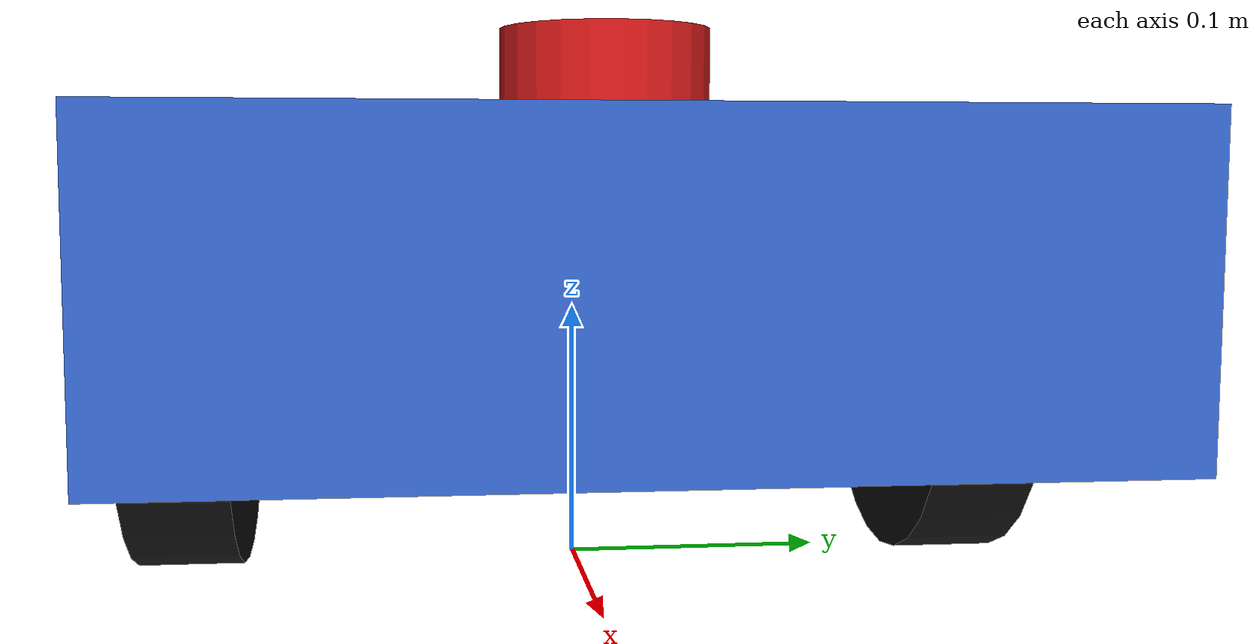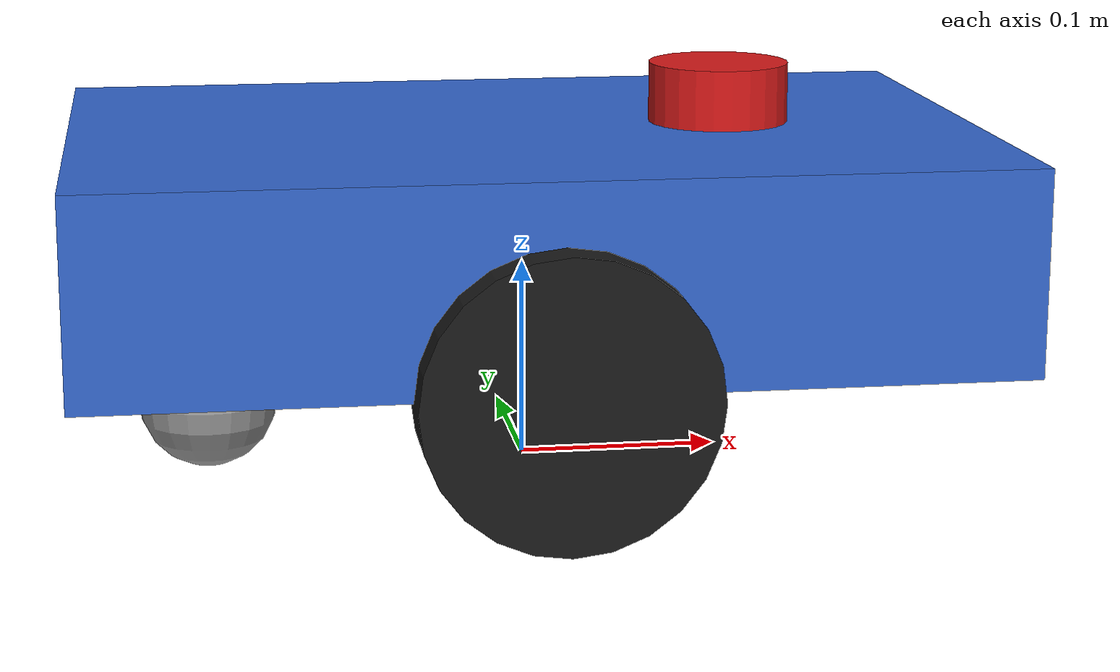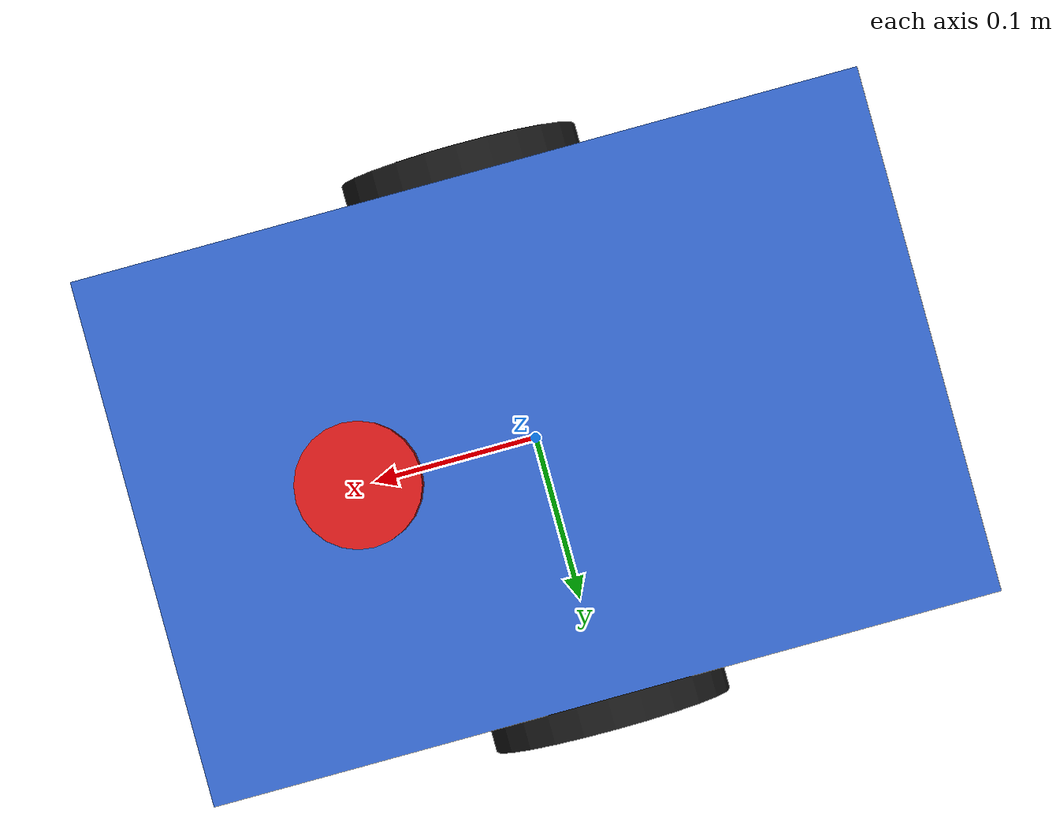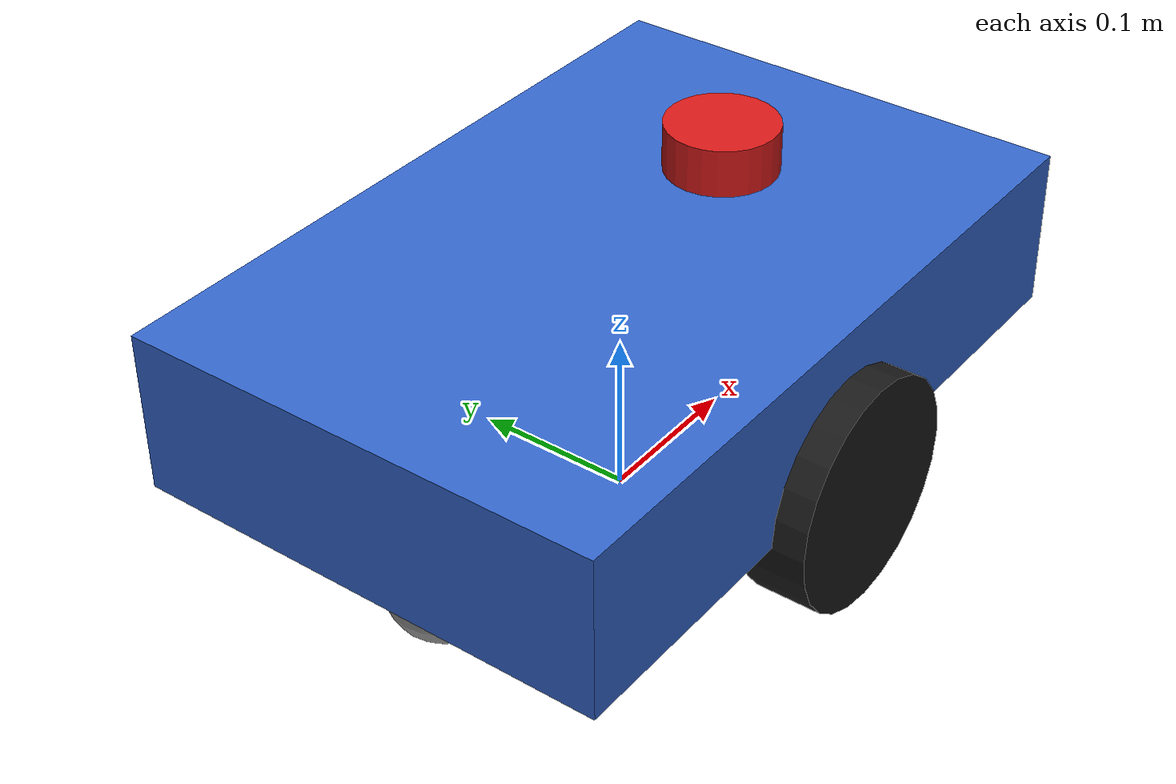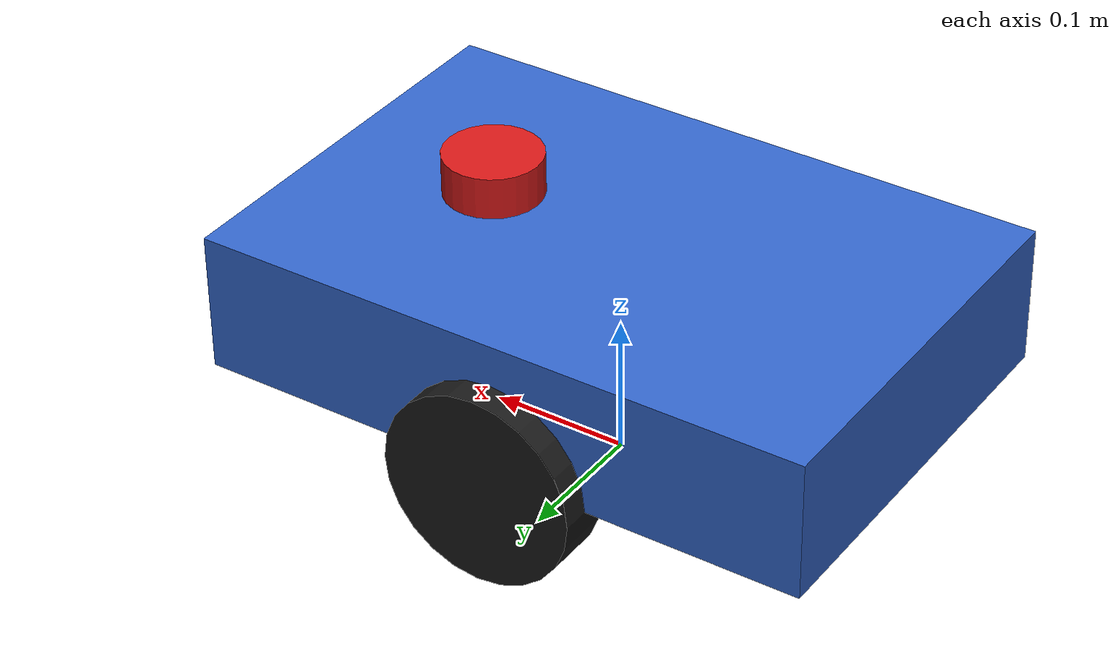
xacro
<?xml version="1.0"?>
<robot name="simple_robot" xmlns:xacro="http://www.ros.org/wiki/xacro">
  <!-- 模块化组织（对应PPT建议结构） -->
  <xacro:include filename="$(find pcyy_robot_description)/urdf/common_properties.xacro"/>
  <xacro:include filename="$(find pcyy_robot_description)/urdf/chassis.xacro"/>
  <xacro:include filename="$(find pcyy_robot_description)/urdf/wheels.xacro"/>
  <xacro:include filename="$(find pcyy_robot_description)/urdf/sensors.xacro"/>
  <xacro:include filename="$(find pcyy_robot_description)/urdf/gazebo_plugins.xacro"/>

  <xacro:simple_chassis/>
  <xacro:wheel_module side="left" sign="1"/>
  <xacro:wheel_module side="right" sign="-1"/>
  <xacro:simple_lidar/>
  <xacro:gazebo_extensions/>
</robot>

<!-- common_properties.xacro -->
<robot xmlns:xacro="http://www.ros.org/wiki/xacro">
  <!-- 几何/质量参数 -->
  <xacro:property name="base_length" value="0.45"/>
  <xacro:property name="base_width" value="0.30"/>
  <xacro:property name="base_height" value="0.10"/>
  <xacro:property name="base_mass" value="6.0"/>

  <xacro:property name="wheel_radius" value="0.07"/>
  <xacro:property name="wheel_width" value="0.04"/>
  <xacro:property name="wheel_mass" value="0.8"/>
  <xacro:property name="wheel_y_offset" value="0.15"/>

  <xacro:property name="caster_radius" value="0.035"/>
  <xacro:property name="caster_mass" value="0.25"/>
  <xacro:property name="caster_x_offset" value="-0.16"/>

  <xacro:property name="lidar_radius" value="0.035"/>
  <xacro:property name="lidar_height" value="0.04"/>
  <xacro:property name="lidar_mass" value="0.12"/>
  <xacro:property name="lidar_x_offset" value="0.10"/>
  <xacro:property name="lidar_z_offset" value="0.18"/>

  <!-- 惯量宏 -->
  <xacro:macro name="box_inertial" params="mass x y z">
    <inertial>
      <origin xyz="0 0 0" rpy="0 0 0"/>
      <mass value="${mass}"/>
      <inertia ixx="${mass*(y*y+z*z)/12.0}" ixy="0" ixz="0"
               iyy="${mass*(x*x+z*z)/12.0}" iyz="0"
               izz="${mass*(x*x+y*y)/12.0}"/>
    </inertial>
  </xacro:macro>

  <xacro:macro name="cylinder_inertial" params="mass radius length">
    <inertial>
      <origin xyz="0 0 0" rpy="0 0 0"/>
      <mass value="${mass}"/>
      <inertia ixx="${mass*(3*radius*radius + length*length)/12.0}" ixy="0" ixz="0"
               iyy="${0.5*mass*radius*radius}" iyz="0"
               izz="${mass*(3*radius*radius + length*length)/12.0}"/>
    </inertial>
  </xacro:macro>

  <xacro:macro name="sphere_inertial" params="mass radius">
    <inertial>
      <origin xyz="0 0 0" rpy="0 0 0"/>
      <mass value="${mass}"/>
      <inertia ixx="${0.4*mass*radius*radius}" ixy="0" ixz="0"
               iyy="${0.4*mass*radius*radius}" iyz="0"
               izz="${0.4*mass*radius*radius}"/>
    </inertial>
  </xacro:macro>
</robot>

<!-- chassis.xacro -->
<robot xmlns:xacro="http://www.ros.org/wiki/xacro">
  <material name="chassis_blue">
    <color rgba="0.2 0.4 0.8 1.0"/>
  </material>
  <material name="caster_gray">
    <color rgba="0.6 0.6 0.6 1.0"/>
  </material>

  <xacro:macro name="simple_chassis" params="">
    <link name="base_link">
      <xacro:box_inertial mass="${base_mass}" x="${base_length}" y="${base_width}" z="${base_height}"/>
      <visual>
        <origin xyz="0 0 ${wheel_radius + 0.5*base_height}" rpy="0 0 0"/>
        <geometry>
          <box size="${base_length} ${base_width} ${base_height}"/>
        </geometry>
        <material name="chassis_blue"/>
      </visual>
      <collision>
        <origin xyz="0 0 ${wheel_radius + 0.5*base_height}" rpy="0 0 0"/>
        <geometry>
          <box size="${base_length} ${base_width} ${base_height}"/>
        </geometry>
      </collision>
    </link>

    <link name="caster_link">
      <xacro:sphere_inertial mass="${caster_mass}" radius="${caster_radius}"/>
      <visual>
        <geometry>
          <sphere radius="${caster_radius}"/>
        </geometry>
        <material name="caster_gray"/>
      </visual>
      <collision>
        <geometry>
          <sphere radius="${caster_radius}"/>
        </geometry>
      </collision>
    </link>

    <joint name="caster_joint" type="fixed">
      <origin xyz="${caster_x_offset} 0 ${caster_radius}" rpy="0 0 0"/>
      <parent link="base_link"/>
      <child link="caster_link"/>
    </joint>
  </xacro:macro>
</robot>

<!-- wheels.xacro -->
<robot xmlns:xacro="http://www.ros.org/wiki/xacro">
  <material name="wheel_black">
    <color rgba="0.1 0.1 0.1 1.0"/>
  </material>

  <xacro:macro name="wheel_module" params="side sign">
    <link name="wheel_${side}_link">
      <xacro:cylinder_inertial mass="${wheel_mass}" radius="${wheel_radius}" length="${wheel_width}"/>
      <visual>
        <origin xyz="0 0 0" rpy="${pi/2} 0 0"/>
        <geometry>
          <cylinder radius="${wheel_radius}" length="${wheel_width}"/>
        </geometry>
        <material name="wheel_black"/>
      </visual>
      <collision>
        <origin xyz="0 0 0" rpy="${pi/2} 0 0"/>
        <geometry>
          <cylinder radius="${wheel_radius}" length="${wheel_width}"/>
        </geometry>
      </collision>
    </link>

    <joint name="wheel_${side}_joint" type="revolute">
      <origin xyz="0 ${sign*wheel_y_offset} ${wheel_radius}" rpy="0 0 0"/>
      <parent link="base_link"/>
      <child link="wheel_${side}_link"/>
      <axis xyz="0 1 0"/>
      <limit lower="-1000" upper="1000" effort="20" velocity="20"/>
      <dynamics damping="0.1" friction="0.05"/>
    </joint>
  </xacro:macro>
</robot>

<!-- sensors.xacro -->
<robot xmlns:xacro="http://www.ros.org/wiki/xacro">
  <material name="lidar_red">
    <color rgba="0.85 0.1 0.1 1.0"/>
  </material>

  <!-- PPT要求：添加一个简单激光雷达（圆柱，fixed） -->
  <xacro:macro name="simple_lidar" params="">
    <link name="lidar_link">
      <xacro:cylinder_inertial mass="${lidar_mass}" radius="${lidar_radius}" length="${lidar_height}"/>
      <visual>
        <origin xyz="0 0 0" rpy="0 0 0"/>
        <geometry>
          <cylinder radius="${lidar_radius}" length="${lidar_height}"/>
        </geometry>
        <material name="lidar_red"/>
      </visual>
      <collision>
        <origin xyz="0 0 0" rpy="0 0 0"/>
        <geometry>
          <cylinder radius="${lidar_radius}" length="${lidar_height}"/>
        </geometry>
      </collision>
    </link>

    <joint name="lidar_joint" type="fixed">
      <origin xyz="${lidar_x_offset} 0 ${lidar_z_offset}" rpy="0 0 0"/>
      <parent link="base_link"/>
      <child link="lidar_link"/>
    </joint>
  </xacro:macro>
</robot>
